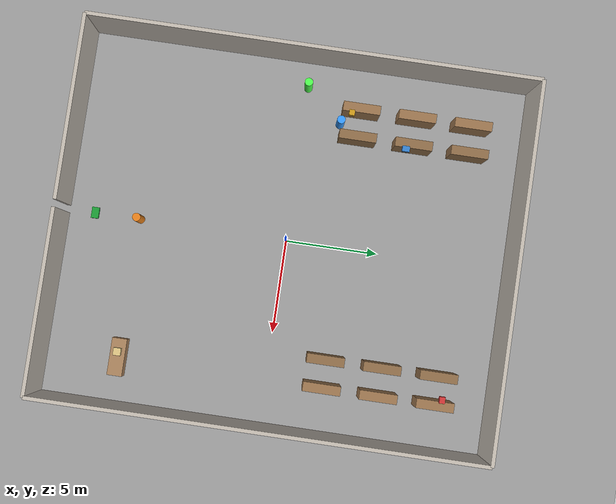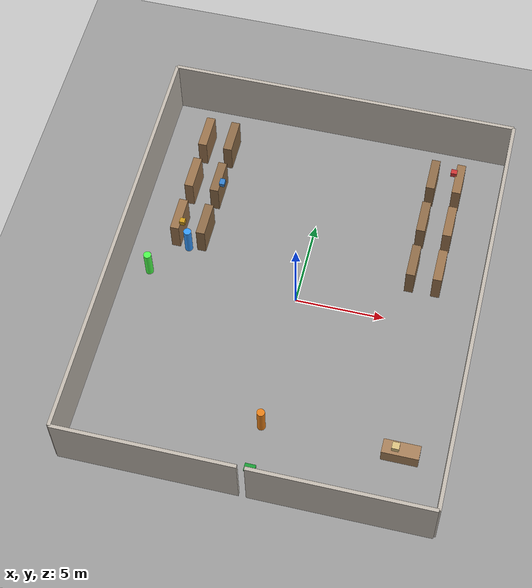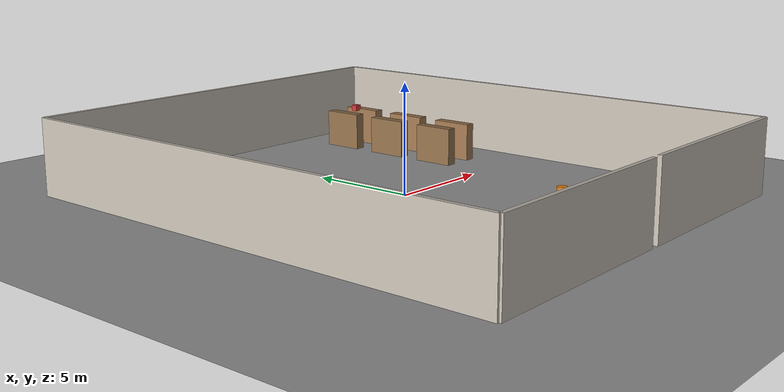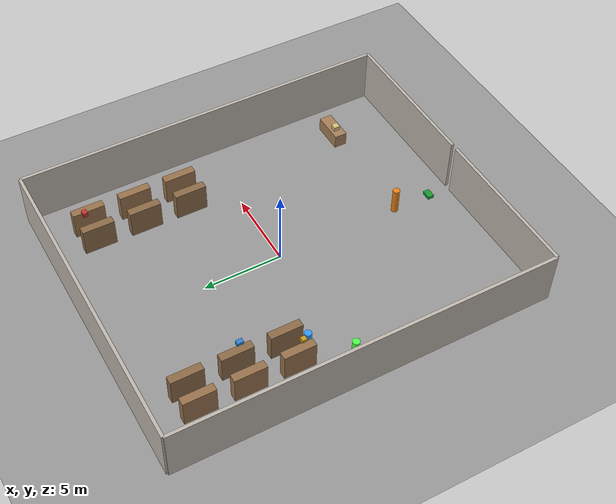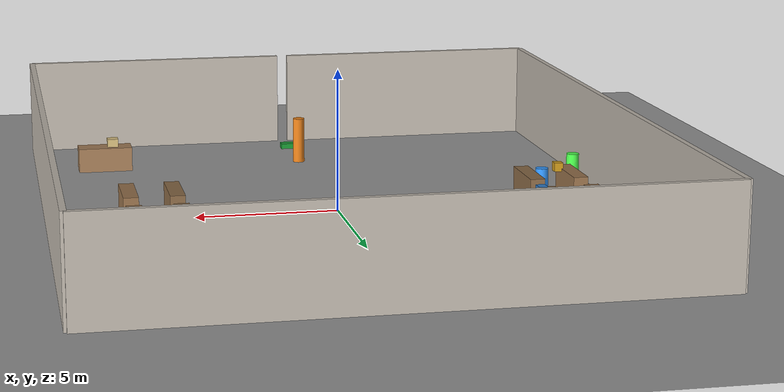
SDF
<?xml version="1.0" ?>
<sdf version="1.9">
  <world name="warehouse">

    <!-- ═══════════════════════════════════════════
         PHYSICS & PLUGINS
    ═══════════════════════════════════════════ -->
    <physics name="1ms" type="ignored">
      <max_step_size>0.001</max_step_size>
      <real_time_factor>1.0</real_time_factor>
    </physics>

    <plugin filename="gz-sim-physics-system"
            name="gz::sim::systems::Physics"/>
    <plugin filename="gz-sim-user-commands-system"
            name="gz::sim::systems::UserCommands"/>
    <plugin filename="gz-sim-scene-broadcaster-system"
            name="gz::sim::systems::SceneBroadcaster"/>
    <plugin filename="gz-sim-sensors-system"
            name="gz::sim::systems::Sensors">
      <render_engine>ogre2</render_engine>
    </plugin>

    <!-- Scene -->
    <scene>
      <ambient>0.4 0.4 0.4 1</ambient>
      <background>0.7 0.7 0.7 1</background>
      <shadows>true</shadows>
    </scene>

    <!-- Lights -->
    <light name="light_0" type="point">
      <pose>0 0 6 0 0 0</pose>
      <diffuse>0.9 0.9 0.85 1</diffuse>
      <specular>0.2 0.2 0.2 1</specular>
      <attenuation><range>20</range><linear>0.05</linear></attenuation>
      <cast_shadows>false</cast_shadows>
    </light>
    <light name="light_1" type="point">
      <pose>10 10 6 0 0 0</pose>
      <diffuse>0.9 0.9 0.85 1</diffuse>
      <specular>0.2 0.2 0.2 1</specular>
      <attenuation><range>20</range><linear>0.05</linear></attenuation>
      <cast_shadows>false</cast_shadows>
    </light>
    <light name="light_2" type="point">
      <pose>-10 10 6 0 0 0</pose>
      <diffuse>0.9 0.9 0.85 1</diffuse>
      <specular>0.2 0.2 0.2 1</specular>
      <attenuation><range>20</range><linear>0.05</linear></attenuation>
      <cast_shadows>false</cast_shadows>
    </light>
    <light name="light_3" type="point">
      <pose>0 -10 6 0 0 0</pose>
      <diffuse>0.9 0.9 0.85 1</diffuse>
      <specular>0.2 0.2 0.2 1</specular>
      <attenuation><range>20</range><linear>0.05</linear></attenuation>
      <cast_shadows>false</cast_shadows>
    </light>

    <!-- ═══════════════════════════════════════════
         GROUND PLANE
    ═══════════════════════════════════════════ -->
    <model name="ground_plane">
      <static>true</static>
      <link name="link">
        <collision name="collision">
          <geometry><plane><normal>0 0 1</normal><size>50 50</size></plane></geometry>
        </collision>
        <visual name="visual">
          <geometry><plane><normal>0 0 1</normal><size>50 50</size></plane></geometry>
          <material>
            <ambient>0.55 0.55 0.55 1</ambient>
            <diffuse>0.6 0.6 0.6 1</diffuse>
          </material>
        </visual>
      </link>
    </model>

    <!-- ═══════════════════════════════════════════
         OUTER WALLS
    ═══════════════════════════════════════════ -->
    <model name="wall_south_L">
      <static>true</static>
      <pose>-5.1 -12 1.75 0 0 0</pose>
      <link name="link">
        <collision name="col"><geometry><box><size>9.8 0.2 3.5</size></box></geometry></collision>
        <visual name="vis"><geometry><box><size>9.8 0.2 3.5</size></box></geometry>
          <material><ambient>0.75 0.72 0.68 1</ambient><diffuse>0.75 0.72 0.68 1</diffuse></material></visual>
      </link>
    </model>
    <model name="wall_south_R">
      <static>true</static>
      <pose>5.1 -12 1.75 0 0 0</pose>
      <link name="link">
        <collision name="col"><geometry><box><size>9.8 0.2 3.5</size></box></geometry></collision>
        <visual name="vis"><geometry><box><size>9.8 0.2 3.5</size></box></geometry>
          <material><ambient>0.75 0.72 0.68 1</ambient><diffuse>0.75 0.72 0.68 1</diffuse></material></visual>
      </link>
    </model>
    <model name="wall_north">
      <static>true</static>
      <pose>0 12 1.75 0 0 0</pose>
      <link name="link">
        <collision name="col"><geometry><box><size>20 0.2 3.5</size></box></geometry></collision>
        <visual name="vis"><geometry><box><size>20 0.2 3.5</size></box></geometry>
          <material><ambient>0.75 0.72 0.68 1</ambient><diffuse>0.75 0.72 0.68 1</diffuse></material></visual>
      </link>
    </model>
    <model name="wall_west">
      <static>true</static>
      <pose>-10 0 1.75 0 0 0</pose>
      <link name="link">
        <collision name="col"><geometry><box><size>0.2 24 3.5</size></box></geometry></collision>
        <visual name="vis"><geometry><box><size>0.2 24 3.5</size></box></geometry>
          <material><ambient>0.75 0.72 0.68 1</ambient><diffuse>0.75 0.72 0.68 1</diffuse></material></visual>
      </link>
    </model>
    <model name="wall_east">
      <static>true</static>
      <pose>10 0 1.75 0 0 0</pose>
      <link name="link">
        <collision name="col"><geometry><box><size>0.2 24 3.5</size></box></geometry></collision>
        <visual name="vis"><geometry><box><size>0.2 24 3.5</size></box></geometry>
          <material><ambient>0.75 0.72 0.68 1</ambient><diffuse>0.75 0.72 0.68 1</diffuse></material></visual>
      </link>
    </model>

    <!-- ═══════════════════════════════════════════
         SHELVES
    ═══════════════════════════════════════════ -->
    <model name="shelf_A1"><static>true</static><pose>-7.5 3 0.9 0 0 0</pose><link name="link">
        <collision name="col"><geometry><box><size>0.5 2.0 1.8</size></box></geometry></collision>
        <visual name="vis"><geometry><box><size>0.5 2.0 1.8</size></box></geometry>
          <material><ambient>0.6 0.45 0.3 1</ambient><diffuse>0.6 0.45 0.3 1</diffuse></material></visual></link></model>
    <model name="shelf_A2"><static>true</static><pose>-7.5 6 0.9 0 0 0</pose><link name="link">
        <collision name="col"><geometry><box><size>0.5 2.0 1.8</size></box></geometry></collision>
        <visual name="vis"><geometry><box><size>0.5 2.0 1.8</size></box></geometry>
          <material><ambient>0.6 0.45 0.3 1</ambient><diffuse>0.6 0.45 0.3 1</diffuse></material></visual></link></model>
    <model name="shelf_A3"><static>true</static><pose>-7.5 9 0.9 0 0 0</pose><link name="link">
        <collision name="col"><geometry><box><size>0.5 2.0 1.8</size></box></geometry></collision>
        <visual name="vis"><geometry><box><size>0.5 2.0 1.8</size></box></geometry>
          <material><ambient>0.6 0.45 0.3 1</ambient><diffuse>0.6 0.45 0.3 1</diffuse></material></visual></link></model>
    <model name="shelf_B1"><static>true</static><pose>-6.0 3 0.9 0 0 0</pose><link name="link">
        <collision name="col"><geometry><box><size>0.5 2.0 1.8</size></box></geometry></collision>
        <visual name="vis"><geometry><box><size>0.5 2.0 1.8</size></box></geometry>
          <material><ambient>0.55 0.42 0.28 1</ambient><diffuse>0.55 0.42 0.28 1</diffuse></material></visual></link></model>
    <model name="shelf_B2"><static>true</static><pose>-6.0 6 0.9 0 0 0</pose><link name="link">
        <collision name="col"><geometry><box><size>0.5 2.0 1.8</size></box></geometry></collision>
        <visual name="vis"><geometry><box><size>0.5 2.0 1.8</size></box></geometry>
          <material><ambient>0.55 0.42 0.28 1</ambient><diffuse>0.55 0.42 0.28 1</diffuse></material></visual></link></model>
    <model name="shelf_B3"><static>true</static><pose>-6.0 9 0.9 0 0 0</pose><link name="link">
        <collision name="col"><geometry><box><size>0.5 2.0 1.8</size></box></geometry></collision>
        <visual name="vis"><geometry><box><size>0.5 2.0 1.8</size></box></geometry>
          <material><ambient>0.55 0.42 0.28 1</ambient><diffuse>0.55 0.42 0.28 1</diffuse></material></visual></link></model>
    <model name="shelf_C1"><static>true</static><pose>7.5 3 0.9 0 0 0</pose><link name="link">
        <collision name="col"><geometry><box><size>0.5 2.0 1.8</size></box></geometry></collision>
        <visual name="vis"><geometry><box><size>0.5 2.0 1.8</size></box></geometry>
          <material><ambient>0.6 0.45 0.3 1</ambient><diffuse>0.6 0.45 0.3 1</diffuse></material></visual></link></model>
    <model name="shelf_C2"><static>true</static><pose>7.5 6 0.9 0 0 0</pose><link name="link">
        <collision name="col"><geometry><box><size>0.5 2.0 1.8</size></box></geometry></collision>
        <visual name="vis"><geometry><box><size>0.5 2.0 1.8</size></box></geometry>
          <material><ambient>0.6 0.45 0.3 1</ambient><diffuse>0.6 0.45 0.3 1</diffuse></material></visual></link></model>
    <model name="shelf_C3"><static>true</static><pose>7.5 9 0.9 0 0 0</pose><link name="link">
        <collision name="col"><geometry><box><size>0.5 2.0 1.8</size></box></geometry></collision>
        <visual name="vis"><geometry><box><size>0.5 2.0 1.8</size></box></geometry>
          <material><ambient>0.6 0.45 0.3 1</ambient><diffuse>0.6 0.45 0.3 1</diffuse></material></visual></link></model>
    <model name="shelf_D1"><static>true</static><pose>6.0 3 0.9 0 0 0</pose><link name="link">
        <collision name="col"><geometry><box><size>0.5 2.0 1.8</size></box></geometry></collision>
        <visual name="vis"><geometry><box><size>0.5 2.0 1.8</size></box></geometry>
          <material><ambient>0.55 0.42 0.28 1</ambient><diffuse>0.55 0.42 0.28 1</diffuse></material></visual></link></model>
    <model name="shelf_D2"><static>true</static><pose>6.0 6 0.9 0 0 0</pose><link name="link">
        <collision name="col"><geometry><box><size>0.5 2.0 1.8</size></box></geometry></collision>
        <visual name="vis"><geometry><box><size>0.5 2.0 1.8</size></box></geometry>
          <material><ambient>0.55 0.42 0.28 1</ambient><diffuse>0.55 0.42 0.28 1</diffuse></material></visual></link></model>
    <model name="shelf_D3"><static>true</static><pose>6.0 9 0.9 0 0 0</pose><link name="link">
        <collision name="col"><geometry><box><size>0.5 2.0 1.8</size></box></geometry></collision>
        <visual name="vis"><geometry><box><size>0.5 2.0 1.8</size></box></geometry>
          <material><ambient>0.55 0.42 0.28 1</ambient><diffuse>0.55 0.42 0.28 1</diffuse></material></visual></link></model>

    <!-- Boxes on shelves -->
    <model name="box_A1a"><static>true</static><pose>-7.15 2.5 1.85 0 0 0</pose><link name="link">
        <collision name="col"><geometry><box><size>0.3 0.3 0.3</size></box></geometry></collision>
        <visual name="vis"><geometry><box><size>0.3 0.3 0.3</size></box></geometry>
          <material><ambient>0.8 0.6 0.1 1</ambient><diffuse>0.8 0.6 0.1 1</diffuse></material></visual></link></model>
    <model name="box_B2a"><static>true</static><pose>-5.65 5.6 1.85 0 0 0</pose><link name="link">
        <collision name="col"><geometry><box><size>0.3 0.4 0.25</size></box></geometry></collision>
        <visual name="vis"><geometry><box><size>0.3 0.4 0.25</size></box></geometry>
          <material><ambient>0.2 0.5 0.8 1</ambient><diffuse>0.2 0.5 0.8 1</diffuse></material></visual></link></model>
    <model name="box_C3a"><static>true</static><pose>7.15 9.3 1.85 0 0 0</pose><link name="link">
        <collision name="col"><geometry><box><size>0.35 0.3 0.3</size></box></geometry></collision>
        <visual name="vis"><geometry><box><size>0.35 0.3 0.3</size></box></geometry>
          <material><ambient>0.8 0.2 0.2 1</ambient><diffuse>0.8 0.2 0.2 1</diffuse></material></visual></link></model>

    <!-- Workbench + packing station -->
    <model name="workbench"><static>true</static><pose>7.5 -8 0.45 0 0 0</pose><link name="link">
        <collision name="col"><geometry><box><size>2.0 0.8 0.9</size></box></geometry></collision>
        <visual name="vis"><geometry><box><size>2.0 0.8 0.9</size></box></geometry>
          <material><ambient>0.65 0.5 0.35 1</ambient><diffuse>0.65 0.5 0.35 1</diffuse></material></visual></link></model>
    <model name="packing_box_1"><static>true</static><pose>7.2 -8 1.0 0 0 0</pose><link name="link">
        <collision name="col"><geometry><box><size>0.4 0.4 0.4</size></box></geometry></collision>
        <visual name="vis"><geometry><box><size>0.4 0.4 0.4</size></box></geometry>
          <material><ambient>0.85 0.75 0.5 1</ambient><diffuse>0.85 0.75 0.5 1</diffuse></material></visual></link></model>

    <!-- Charging dock -->
    <model name="charging_dock"><static>true</static><pose>0 -10.5 0.1 0 0 0</pose><link name="link">
        <collision name="col"><geometry><box><size>0.6 0.4 0.2</size></box></geometry></collision>
        <visual name="vis"><geometry><box><size>0.6 0.4 0.2</size></box></geometry>
          <material><ambient>0.1 0.6 0.2 1</ambient><diffuse>0.1 0.6 0.2 1</diffuse></material></visual></link></model>

<!-- ─────────────── Pedestrian 1 (Centre aisle) ─────────────── -->
<model name="pedestrian_1">
  <static>false</static>
  <pose>0 -8 0.85 0 0 0</pose>

  <link name="link">
    <gravity>false</gravity>

    <inertial>
      <mass>70</mass>
      <inertia>
        <ixx>3.5</ixx><iyy>3.5</iyy><izz>1.0</izz>
        <ixy>0</ixy><ixz>0</ixz><iyz>0</iyz>
      </inertia>
    </inertial>

    <collision name="col">
      <geometry>
        <cylinder>
          <radius>0.22</radius>
          <length>1.7</length>
        </cylinder>
      </geometry>
      <surface>
        <friction>
          <ode>
            <mu>1.0</mu>
            <mu2>1.0</mu2>
          </ode>
        </friction>
      </surface>
    </collision>

    <visual name="vis">
      <geometry>
        <cylinder>
          <radius>0.22</radius>
          <length>1.7</length>
        </cylinder>
      </geometry>
      <material>
        <ambient>0.9 0.5 0.1 1</ambient>
        <diffuse>0.9 0.5 0.1 1</diffuse>
      </material>
    </visual>
  </link>
</model>

<!-- ─────────────── Pedestrian 2 (West aisle) ─────────────── -->
<model name="pedestrian_2">
  <static>false</static>
  <pose>-6.75 2 0.85 0 0 0</pose>

  <link name="link">
    <gravity>false</gravity>

    <inertial>
      <mass>70</mass>
      <inertia>
        <ixx>3.5</ixx><iyy>3.5</iyy><izz>1.0</izz>
        <ixy>0</ixy><ixz>0</ixz><iyz>0</iyz>
      </inertia>
    </inertial>

    <collision name="col">
      <geometry>
        <cylinder>
          <radius>0.22</radius>
          <length>1.7</length>
        </cylinder>
      </geometry>
      <surface>
        <friction>
          <ode>
            <mu>1.0</mu>
            <mu2>1.0</mu2>
          </ode>
        </friction>
      </surface>
    </collision>

    <visual name="vis">
      <geometry>
        <cylinder>
          <radius>0.22</radius>
          <length>1.7</length>
        </cylinder>
      </geometry>
      <material>
        <ambient>0.2 0.6 1.0 1</ambient>
        <diffuse>0.2 0.6 1.0 1</diffuse>
      </material>
    </visual>
  </link>
</model>

<!-- ─────────────── Pedestrian 3 (Crossing) ─────────────── -->
<model name="pedestrian_3">
  <static>false</static>
  <pose>-8.5 0 0.85 0 0 0</pose>

  <link name="link">
    <gravity>false</gravity>

    <inertial>
      <mass>70</mass>
      <inertia>
        <ixx>3.5</ixx><iyy>3.5</iyy><izz>1.0</izz>
        <ixy>0</ixy><ixz>0</ixz><iyz>0</iyz>
      </inertia>
    </inertial>

    <collision name="col">
      <geometry>
        <cylinder>
          <radius>0.22</radius>
          <length>1.7</length>
        </cylinder>
      </geometry>
      <surface>
        <friction>
          <ode>
            <mu>1.0</mu>
            <mu2>1.0</mu2>
          </ode>
        </friction>
      </surface>
    </collision>

    <visual name="vis">
      <geometry>
        <cylinder>
          <radius>
0.22</radius>
          <length>1.7</length>
        </cylinder>
      </geometry>
      <material>
        <ambient>0.3 1.0 0.3 1</ambient>
        <diffuse>0.3 1.0 0.3 1</diffuse>
      </material>
    </visual>
  </link>
</model>

  </world>
</sdf>
